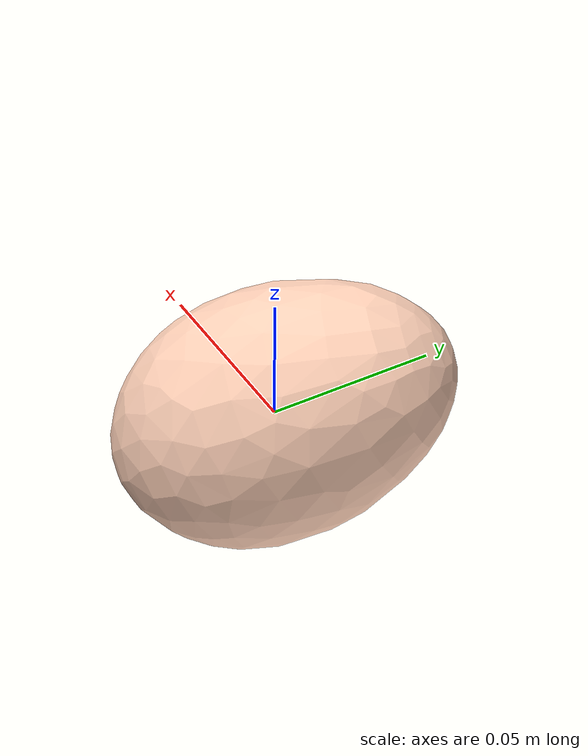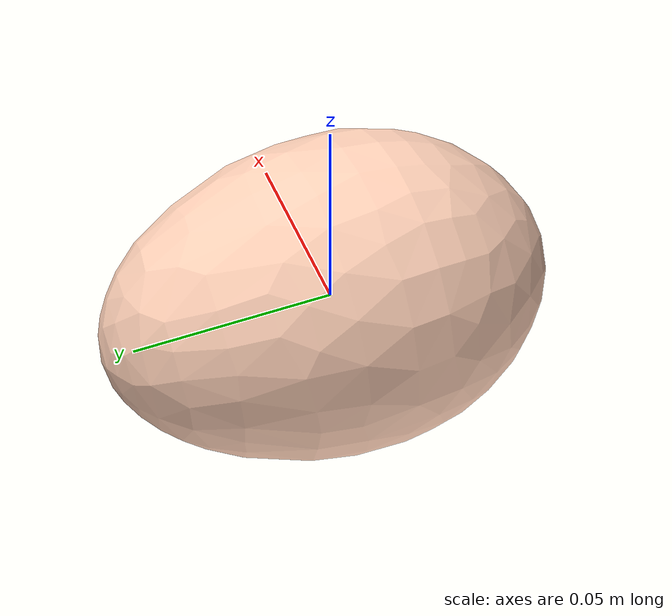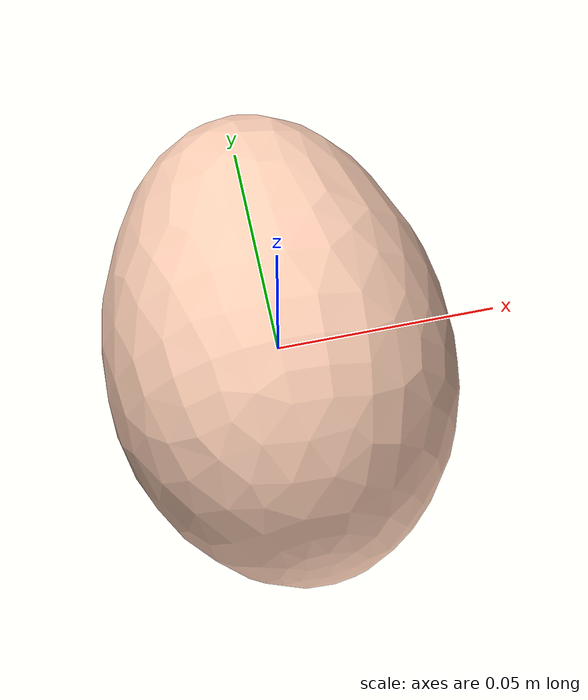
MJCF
<mujoco model="Egg_20">
  <compiler autolimits="true" boundmass="0.01" angle="radian"/>
  <default>
    <default class="/">
      <default class="__VISUAL_MJT__">
        <geom contype="0" conaffinity="0" group="0"/>
      </default>
      <default class="__STRUCTURAL_MJT__">
        <geom contype="8" conaffinity="15" group="4" friction="0.90000000000000002 0.90000000000000002 0.001" solref="0.025000000000000001 1" solimp="0.998 0.998 0.001"/>
      </default>
      <default class="__DYNAMIC_MJT__">
        <geom contype="1" conaffinity="15" group="4" friction="0.90000000000000002 0.90000000000000002 0.001" solref="0.025000000000000001 1" solimp="0.998 0.998 0.001"/>
      </default>
    </default>
  </default>
  <asset>
    <material name="material_Egg2_Mat" class="/" specular="0.5" shininess="0.5" rgba="1 0.81973430000000003 0.72058820000000001 1"/>
    <mesh name="Egg_20_egg_20" class="/" file="Egg_20_egg_20/Egg_20_egg_20.obj" scale="1 1 1"/>
  </asset>
  <worldbody>
    <body name="Egg_20">
      <joint name="Egg_20_free" class="/" type="free" pos="0 0 0" axis="0 0 1" stiffness="0" range="0 0" armature="0" damping="0.10000000000000001" frictionloss="0"/>
      <body name="Egg_20_egg_20" pos="-0.00023000000000000001 0 -0.00014999999999999999" quat="1 0 0 0">
        <geom name="Egg_20_egg_20" class="__VISUAL_MJT__" type="mesh" material="material_Egg2_Mat" shellinertia="true" mesh="Egg_20_egg_20"/>
        <geom name="Egg_20_PrimitiveCollider_0" class="__DYNAMIC_MJT__" type="capsule" size="0.037522807717323303 0.017408318817615509" rgba="0 1 0 1" pos="-0 0 0" quat="0.70710678118654757 0.70710678118654746 0 0"/>
      </body>
    </body>
  </worldbody>
</mujoco>
